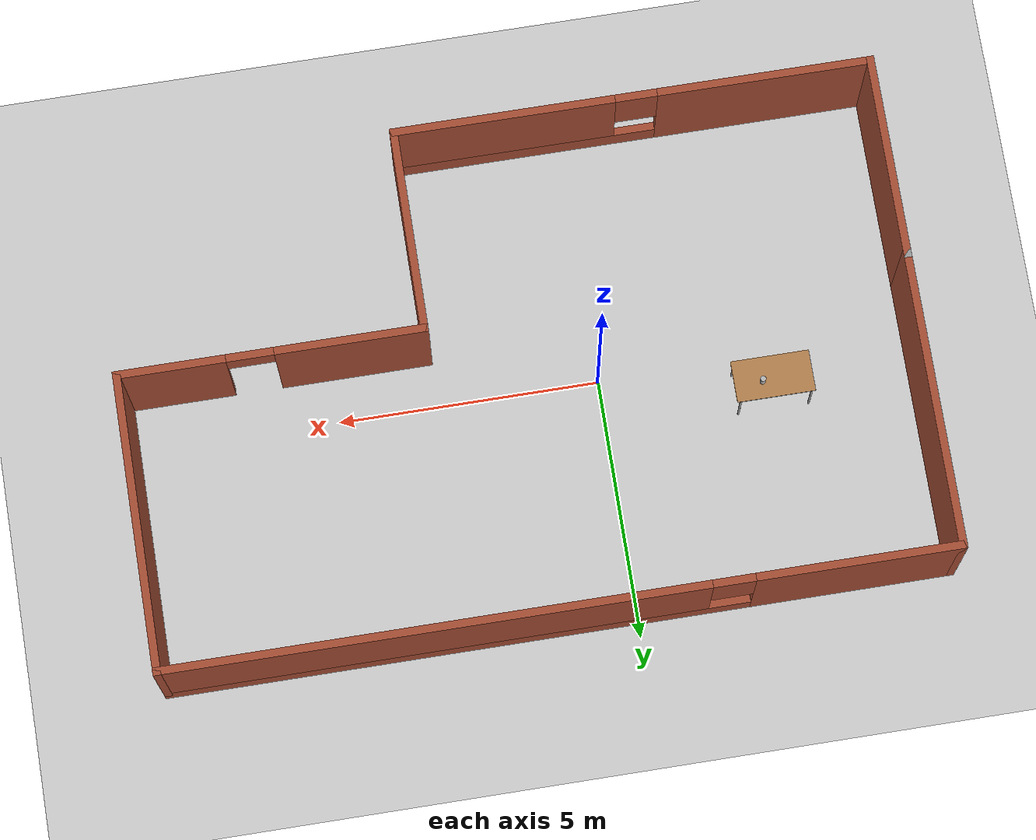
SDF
<sdf version="1.7">
 <world name="default">
  <model name="ground_plane">
   <static>1</static>
   <link name="link">
    <collision name="collision">
     <geometry><plane><normal>0 0 1</normal><size>100 100</size></plane></geometry>
     <surface>
      <contact><collide_bitmask>65535</collide_bitmask></contact>
      <friction><ode><mu>100</mu><mu2>50</mu2></ode></friction>
     </surface>
    </collision>
    <visual name="visual">
     <cast_shadows>0</cast_shadows>
     <geometry><plane><normal>0 0 1</normal><size>100 100</size></plane></geometry>
     <material>
      <script><uri>file://media/materials/scripts/gazebo.material</uri><name>Gazebo/Grey</name></script>
     </material>
    </visual>
   </link>
  </model>
  <model name="projet1">
   <pose>1.475 -0.055 0 0 -0 0</pose>
   <link name="Wall_11">
    <collision name="Wall_11_Collision">
     <geometry><box><size>5.75 0.15 2.5</size></box></geometry>
     <pose>0 0 1.25 0 -0 0</pose>
    </collision>
    <visual name="Wall_11_Visual">
     <pose>0 0 1.25 0 -0 0</pose>
     <geometry><box><size>5.75 0.15 2.5</size></box></geometry>
     <material>
      <script><uri>file://media/materials/scripts/gazebo.material</uri><name>Gazebo/Bricks</name></script>
      <ambient>1 1 1 1</ambient>
     </material>
     <meta><layer>0</layer></meta>
    </visual>
    <pose>-7.425 1.925 0 0 -0 1.5708</pose>
   </link>
   <link name="Wall_12">
    <pose>-0 4.725 0 0 -0 0</pose>
    <visual name="Wall_12_Visual_0">
     <pose>-5.54356 0 1.25 0 -0 0</pose>
     <geometry><box><size>3.91288 0.15 2.5</size></box></geometry>
     <material>
      <script><uri>file://media/materials/scripts/gazebo.material</uri><name>Gazebo/Bricks</name></script>
      <ambient>1 1 1 1</ambient>
     </material>
     <meta><layer>0</layer></meta>
    </visual>
    <collision name="Wall_12_Collision_0">
     <geometry><box><size>3.91288 0.15 2.5</size></box></geometry>
     <pose>-5.54356 0 1.25 0 -0 0</pose>
    </collision>
    <visual name="Wall_12_Visual_1">
     <pose>1.95644 0 0.25 0 -0 0</pose>
     <geometry><box><size>11.0871 0.15 0.5</size></box></geometry>
     <material>
      <script><uri>file://media/materials/scripts/gazebo.material</uri><name>Gazebo/Bricks</name></script>
      <ambient>1 1 1 1</ambient>
     </material>
     <meta><layer>0</layer></meta>
    </visual>
    <collision name="Wall_12_Collision_1">
     <geometry><box><size>11.0871 0.15 0.5</size></box></geometry>
     <pose>1.95644 0 0.25 0 -0 0</pose>
    </collision>
    <visual name="Wall_12_Visual_2">
     <pose>2.35644 0 1.5 0 -0 0</pose>
     <geometry><box><size>10.2871 0.15 2</size></box></geometry>
     <material>
      <script><uri>file://media/materials/scripts/gazebo.material</uri><name>Gazebo/Bricks</name></script>
      <ambient>1 1 1 1</ambient>
     </material>
     <meta><layer>0</layer></meta>
    </visual>
    <collision name="Wall_12_Collision_2">
     <geometry><box><size>10.2871 0.15 2</size></box></geometry>
     <pose>2.35644 0 1.5 0 -0 0</pose>
    </collision>
    <visual name="Wall_12_Visual_3">
     <pose>-3.18712 0 1.9 0 -0 0</pose>
     <geometry><box><size>0.8 0.15 1.2</size></box></geometry>
     <material>
      <script><uri>file://media/materials/scripts/gazebo.material</uri><name>Gazebo/Bricks</name></script>
      <ambient>1 1 1 1</ambient>
     </material>
     <meta><layer>0</layer></meta>
    </visual>
    <collision name="Wall_12_Collision_3">
     <geometry><box><size>0.8 0.15 1.2</size></box></geometry>
     <pose>-3.18712 0 1.9 0 -0 0</pose>
    </collision>
   </link>
   <link name="Wall_13">
    <collision name="Wall_13_Collision">
     <geometry><box><size>5.75 0.15 2.5</size></box></geometry>
     <pose>0 0 1.25 0 -0 0</pose>
    </collision>
    <visual name="Wall_13_Visual">
     <pose>0 0 1.25 0 -0 0</pose>
     <geometry><box><size>5.75 0.15 2.5</size></box></geometry>
     <material>
      <script><uri>file://media/materials/scripts/gazebo.material</uri><name>Gazebo/Bricks</name></script>
      <ambient>1 1 1 1</ambient>
     </material>
     <meta><layer>0</layer></meta>
    </visual>
    <pose>7.425 1.925 0 0 -0 -1.5708</pose>
   </link>
   <link name="Wall_14">
    <pose>4.55 -0.875 0 0 -0 3.14159</pose>
    <visual name="Wall_14_Visual_0">
     <pose>-1.89638 0 1.25 0 -0 0</pose>
     <geometry><box><size>2.10724 0.15 2.5</size></box></geometry>
     <material>
      <script><uri>file://media/materials/scripts/gazebo.material</uri><name>Gazebo/Bricks</name></script>
      <ambient>0.921569 0.807843 0.615686 1</ambient>
     </material>
     <meta><layer>0</layer></meta>
    </visual>
    <collision name="Wall_14_Collision_0">
     <geometry><box><size>2.10724 0.15 2.5</size></box></geometry>
     <pose>-1.89638 0 1.25 0 -0 0</pose>
    </collision>
    <visual name="Wall_14_Visual_1">
     <pose>1.50362 0 1.25 0 -0 0</pose>
     <geometry><box><size>2.89276 0.15 2.5</size></box></geometry>
     <material>
      <script><uri>file://media/materials/scripts/gazebo.material</uri><name>Gazebo/Bricks</name></script>
      <ambient>0.921569 0.807843 0.615686 1</ambient>
     </material>
     <meta><layer>0</layer></meta>
    </visual>
    <collision name="Wall_14_Collision_1">
     <geometry><box><size>2.89276 0.15 2.5</size></box></geometry>
     <pose>1.50362 0 1.25 0 -0 0</pose>
    </collision>
    <visual name="Wall_14_Visual_2">
     <pose>-0.392757 0 2.25 0 -0 0</pose>
     <geometry><box><size>0.9 0.15 0.5</size></box></geometry>
     <material>
      <script><uri>file://media/materials/scripts/gazebo.material</uri><name>Gazebo/Bricks</name></script>
      <ambient>0.921569 0.807843 0.615686 1</ambient>
     </material>
     <meta><layer>0</layer></meta>
    </visual>
    <collision name="Wall_14_Collision_2">
     <geometry><box><size>0.9 0.15 0.5</size></box></geometry>
     <pose>-0.392757 0 2.25 0 -0 0</pose>
    </collision>
   </link>
   <link name="Wall_6">
    <collision name="Wall_6_Collision">
     <geometry><box><size>0.15 0.15 2.5</size></box></geometry>
     <pose>0 0 1.25 0 -0 0</pose>
    </collision>
    <visual name="Wall_6_Visual">
     <pose>0 0 1.25 0 -0 0</pose>
     <geometry><box><size>0.15 0.15 2.5</size></box></geometry>
     <material>
      <script><uri>file://media/materials/scripts/gazebo.material</uri><name>Gazebo/Grey</name></script>
      <ambient>1 1 1 1</ambient>
     </material>
     <meta><layer>0</layer></meta>
    </visual>
    <pose>-7.425 -0.875 0 0 -0 0</pose>
   </link>
   <link name="Wall_7">
    <collision name="Wall_7_Collision">
     <geometry><box><size>4 0.15 2.5</size></box></geometry>
     <pose>0 0 1.25 0 -0 0</pose>
    </collision>
    <visual name="Wall_7_Visual">
     <pose>0 0 1.25 0 -0 0</pose>
     <geometry><box><size>4 0.15 2.5</size></box></geometry>
     <material>
      <script><uri>file://media/materials/scripts/gazebo.material</uri><name>Gazebo/Bricks</name></script>
      <ambient>1 1 1 1</ambient>
     </material>
     <meta><layer>0</layer></meta>
    </visual>
    <pose>-7.425 -2.8 0 0 -0 -1.5708</pose>
   </link>
   <link name="Wall_8">
    <pose>-2.875 -4.725 0 0 -0 0</pose>
    <visual name="Wall_8_Visual_0">
     <pose>-2.54588 0 1.25 0 -0 0</pose>
     <geometry><box><size>4.15824 0.15 2.5</size></box></geometry>
     <material>
      <script><uri>file://media/materials/scripts/gazebo.material</uri><name>Gazebo/Bricks</name></script>
      <ambient>1 1 1 1</ambient>
     </material>
     <meta><layer>0</layer></meta>
    </visual>
    <collision name="Wall_8_Collision_0">
     <geometry><box><size>4.15824 0.15 2.5</size></box></geometry>
     <pose>-2.54588 0 1.25 0 -0 0</pose>
    </collision>
    <visual name="Wall_8_Visual_1">
     <pose>2.07912 0 0.25 0 -0 0</pose>
     <geometry><box><size>5.09176 0.15 0.5</size></box></geometry>
     <material>
      <script><uri>file://media/materials/scripts/gazebo.material</uri><name>Gazebo/Bricks</name></script>
      <ambient>1 1 1 1</ambient>
     </material>
     <meta><layer>0</layer></meta>
    </visual>
    <collision name="Wall_8_Collision_1">
     <geometry><box><size>5.09176 0.15 0.5</size></box></geometry>
     <pose>2.07912 0 0.25 0 -0 0</pose>
    </collision>
    <visual name="Wall_8_Visual_2">
     <pose>2.47912 0 1.5 0 -0 0</pose>
     <geometry><box><size>4.29176 0.15 2</size></box></geometry>
     <material>
      <script><uri>file://media/materials/scripts/gazebo.material</uri><name>Gazebo/Bricks</name></script>
      <ambient>1 1 1 1</ambient>
     </material>
     <meta><layer>0</layer></meta>
    </visual>
    <collision name="Wall_8_Collision_2">
     <geometry><box><size>4.29176 0.15 2</size></box></geometry>
     <pose>2.47912 0 1.5 0 -0 0</pose>
    </collision>
    <visual name="Wall_8_Visual_3">
     <pose>-0.066763 0 1.9 0 -0 0</pose>
     <geometry><box><size>0.8 0.15 1.2</size></box></geometry>
     <material>
      <script><uri>file://media/materials/scripts/gazebo.material</uri><name>Gazebo/Bricks</name></script>
      <ambient>1 1 1 1</ambient>
     </material>
     <meta><layer>0</layer></meta>
    </visual>
    <collision name="Wall_8_Collision_3">
     <geometry><box><size>0.8 0.15 1.2</size></box></geometry>
     <pose>-0.066763 0 1.9 0 -0 0</pose>
    </collision>
   </link>
   <link name="Wall_9">
    <collision name="Wall_9_Collision">
     <geometry><box><size>4 0.15 2.5</size></box></geometry>
     <pose>0 0 1.25 0 -0 0</pose>
    </collision>
    <visual name="Wall_9_Visual">
     <pose>0 0 1.25 0 -0 0</pose>
     <geometry><box><size>4 0.15 2.5</size></box></geometry>
     <material>
      <script><uri>file://media/materials/scripts/gazebo.material</uri><name>Gazebo/Bricks</name></script>
      <ambient>1 1 1 1</ambient>
     </material>
     <meta><layer>0</layer></meta>
    </visual>
    <pose>1.675 -2.8 0 0 -0 1.5708</pose>
   </link>
   <static>1</static>
  </model>
  <model name="table">
   <static>1</static>
   <link name="link">
    <collision name="surface">
     <pose>0 0 1 0 -0 0</pose>
     <geometry><box><size>1.5 0.8 0.03</size></box></geometry>
     <surface><friction><ode><mu>0.6</mu><mu2>0.6</mu2></ode></friction></surface>
    </collision>
    <visual name="visual1">
     <pose>0 0 1 0 -0 0</pose>
     <geometry><box><size>1.5 0.8 0.03</size></box></geometry>
     <material>
      <script><uri>file://media/materials/scripts/gazebo.material</uri><name>Gazebo/Wood</name></script>
     </material>
    </visual>
    <collision name="front_left_leg">
     <pose>0.68 0.38 0.5 0 -0 0</pose>
     <geometry><cylinder><radius>0.02</radius><length>1</length></cylinder></geometry>
    </collision>
    <visual name="front_left_leg">
     <pose>0.68 0.38 0.5 0 -0 0</pose>
     <geometry><cylinder><radius>0.02</radius><length>1</length></cylinder></geometry>
     <material>
      <script><uri>file://media/materials/scripts/gazebo.material</uri><name>Gazebo/Grey</name></script>
     </material>
    </visual>
    <collision name="front_right_leg">
     <pose>0.68 -0.38 0.5 0 -0 0</pose>
     <geometry><cylinder><radius>0.02</radius><length>1</length></cylinder></geometry>
    </collision>
    <visual name="front_right_leg">
     <pose>0.68 -0.38 0.5 0 -0 0</pose>
     <geometry><cylinder><radius>0.02</radius><length>1</length></cylinder></geometry>
     <material>
      <script><uri>file://media/materials/scripts/gazebo.material</uri><name>Gazebo/Grey</name></script>
     </material>
    </visual>
    <collision name="back_right_leg">
     <pose>-0.68 -0.38 0.5 0 -0 0</pose>
     <geometry><cylinder><radius>0.02</radius><length>1</length></cylinder></geometry>
    </collision>
    <visual name="back_right_leg">
     <pose>-0.68 -0.38 0.5 0 -0 0</pose>
     <geometry><cylinder><radius>0.02</radius><length>1</length></cylinder></geometry>
     <material>
      <script><uri>file://media/materials/scripts/gazebo.material</uri><name>Gazebo/Grey</name></script>
     </material>
    </visual>
    <collision name="back_left_leg">
     <pose>-0.68 0.38 0.5 0 -0 0</pose>
     <geometry><cylinder><radius>0.02</radius><length>1</length></cylinder></geometry>
    </collision>
    <visual name="back_left_leg">
     <pose>-0.68 0.38 0.5 0 -0 0</pose>
     <geometry><cylinder><radius>0.02</radius><length>1</length></cylinder></geometry>
     <material>
      <script><uri>file://media/materials/scripts/gazebo.material</uri><name>Gazebo/Grey</name></script>
     </material>
    </visual>
   </link>
   <pose>-3.22556 0.635247 0 0 -0 0</pose>
  </model>
  <model name="beer">
   <link name="link">
    <pose>0 0 0.115 0 -0 0</pose>
    <inertial>
     <mass>0.39</mass>
     <inertia><ixx>0.00058</ixx><ixy>0</ixy><ixz>0</ixz><iyy>0.00058</iyy><iyz>0</iyz><izz>0.00019</izz></inertia>
    </inertial>
    <collision name="collision">
     <geometry><cylinder><radius>0.055</radius><length>0.23</length></cylinder></geometry>
    </collision>
    <visual name="visual">
     <geometry><cylinder><radius>0.055</radius><length>0.23</length></cylinder></geometry>
     <material>
      <script>
       <uri>model://beer/materials/scripts</uri>
       <uri>model://beer/materials/textures</uri>
       <name>Beer/Diffuse</name>
      </script>
     </material>
    </visual>
   </link>
   <pose>-3.01227 0.709789 1.015 1e-06 -2.7e-05 0.000949</pose>
  </model>
 </world>
</sdf>
